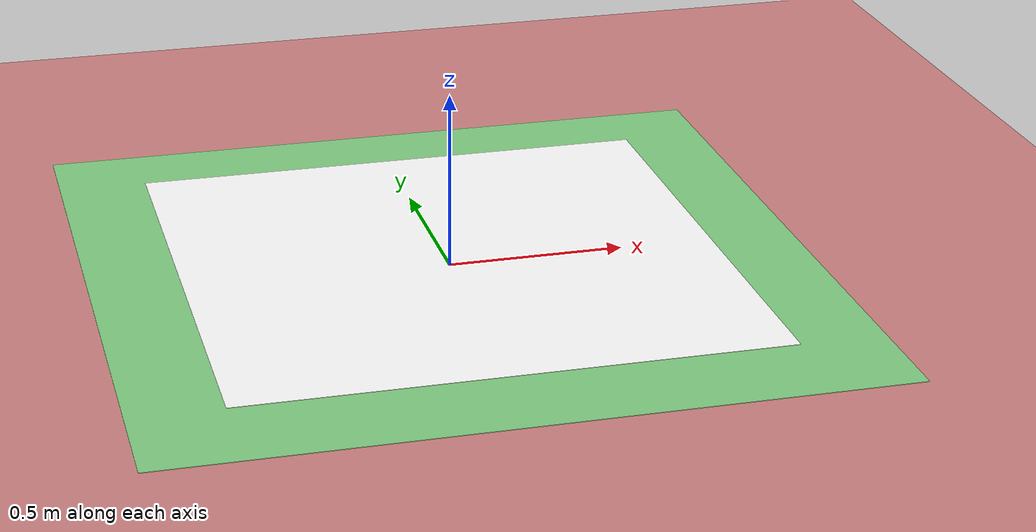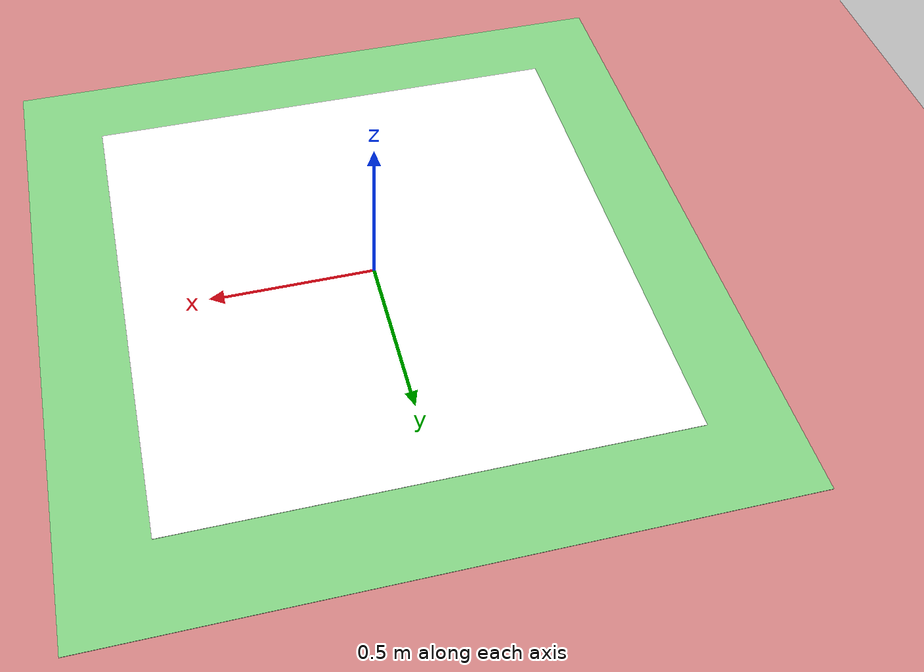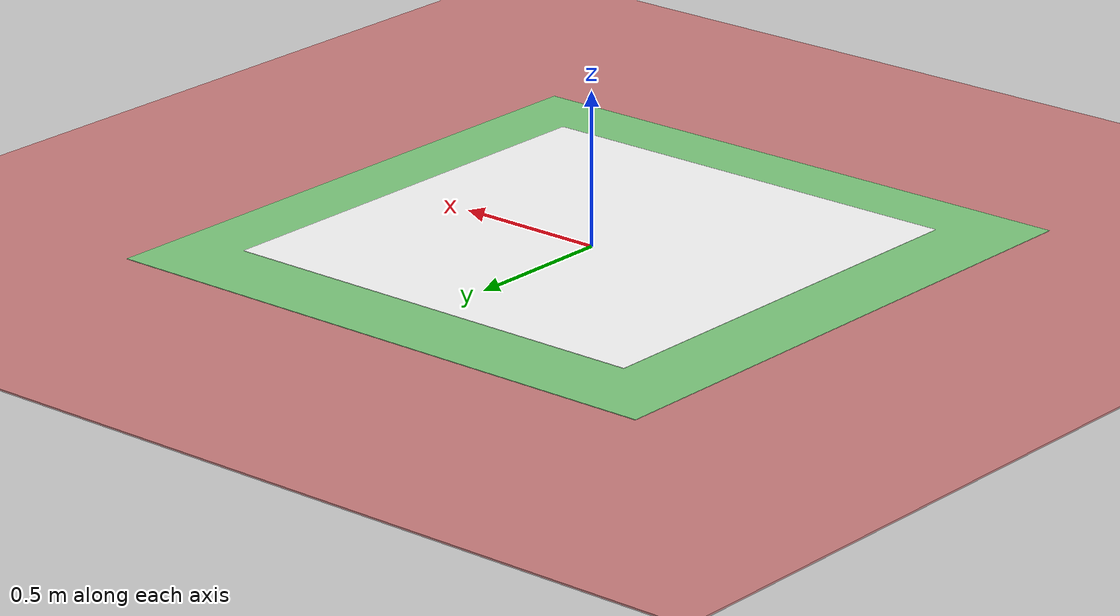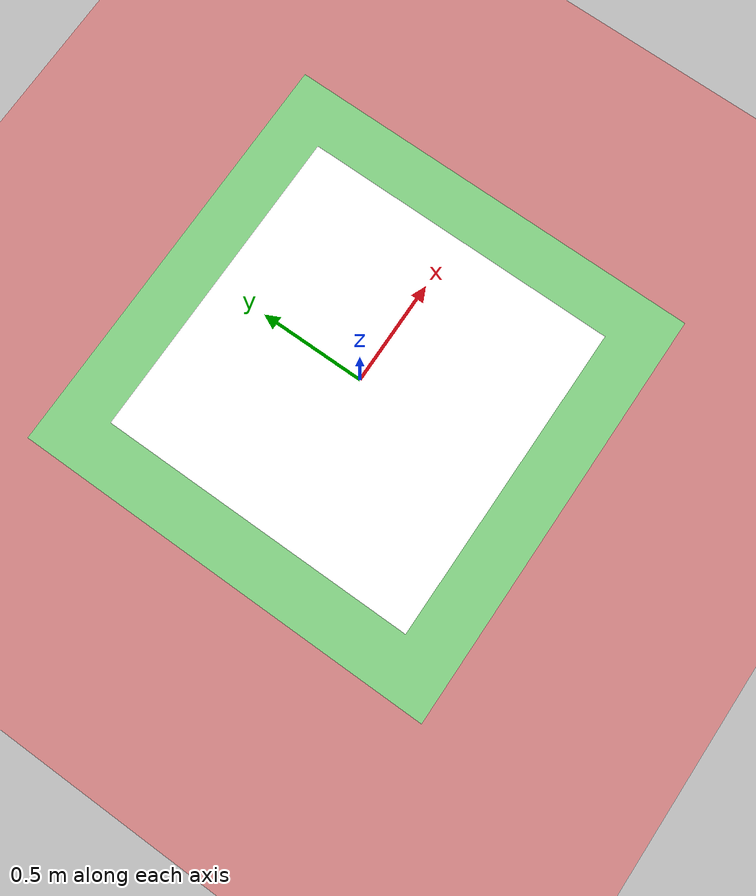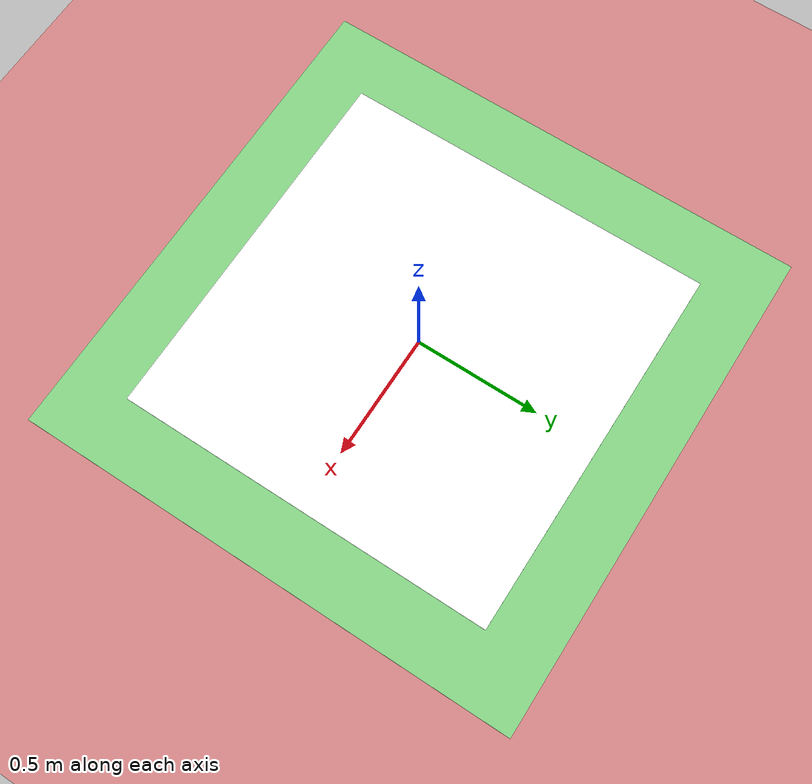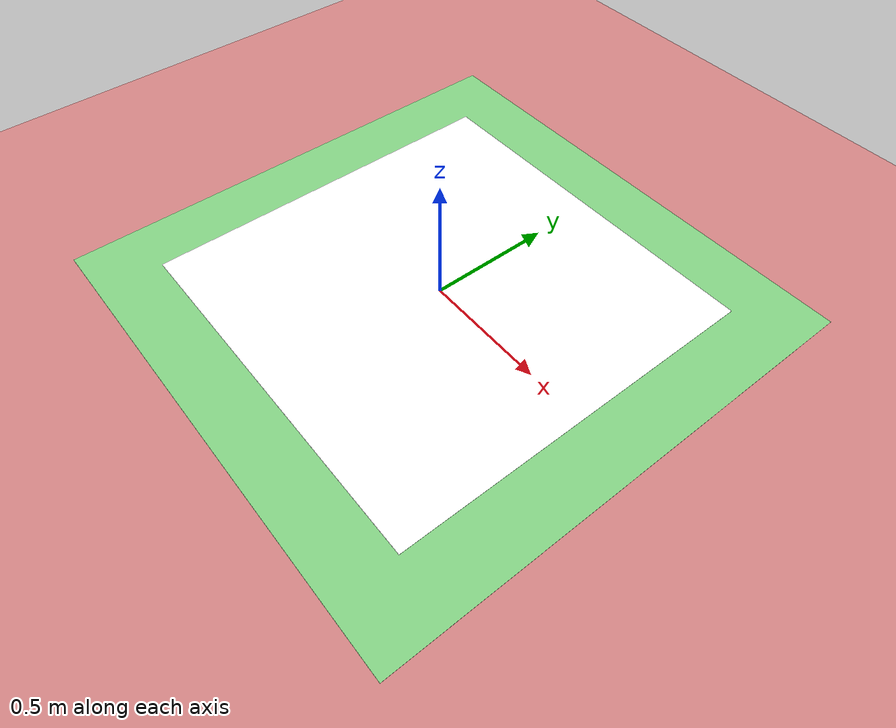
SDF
<?xml version="1.0" encoding="UTF-8"?>
<sdf version="1.9">
  <world name="aruco_mocap">
    <physics type="ode">
      <max_step_size>0.004</max_step_size>
      <real_time_factor>1.0</real_time_factor>
      <real_time_update_rate>250</real_time_update_rate>
    </physics>
    <gravity>0 0 -9.8</gravity>
    <magnetic_field>6e-06 2.3e-05 -4.2e-05</magnetic_field>
    <atmosphere type="adiabatic"/>
    <scene>
      <grid>false</grid>
      <ambient>0.4 0.4 0.4 1</ambient>
      <background>0.7 0.7 0.7 1</background>
      <shadows>true</shadows>
    </scene>

    <model name="ground_plane">
      <static>true</static>
      <link name="link">
        <collision name="collision">
          <geometry>
            <plane>
              <normal>0 0 1</normal>
              <size>1 1</size>
            </plane>
          </geometry>
          <surface>
            <friction>
              <ode/>
            </friction>
            <bounce/>
            <contact/>
          </surface>
        </collision>
        <visual name="visual">
          <geometry>
            <plane>
              <normal>0 0 1</normal>
              <size>100 100</size>
            </plane>
          </geometry>
          <material>
            <ambient>0.8 0.8 0.8 1</ambient>
            <diffuse>0.8 0.8 0.8 1</diffuse>
            <specular>0.8 0.8 0.8 1</specular>
          </material>
        </visual>
        <pose>0 0 0 0 -0 0</pose>
        <inertial>
          <pose>0 0 0 0 -0 0</pose>
          <mass>1</mass>
          <inertia>
            <ixx>1</ixx>
            <ixy>0</ixy>
            <ixz>0</ixz>
            <iyy>1</iyy>
            <iyz>0</iyz>
            <izz>1</izz>
          </inertia>
        </inertial>
        <enable_wind>false</enable_wind>
      </link>
      <pose>0 0 0 0 -0 0</pose>
      <self_collide>false</self_collide>
    </model>

<model name="mocap_plane">
      <static>true</static>
      <link name="link">
        <collision name="collision">
          <geometry>
            <plane>
              <normal>0 0 1</normal>
              <size>1 1</size>
            </plane>
          </geometry>
          <surface>
            <friction>
              <ode/>
            </friction>
            <bounce/>
            <contact/>
          </surface>
        </collision>
        <visual name="visual">
          <geometry>
            <plane>
              <normal>0 0 1</normal>
              <size>10 5</size>
            </plane>
          </geometry>
          <material>
            <ambient>0.8 0.8 0.8 1</ambient>
            <diffuse>0.8 0.5 0.5 1</diffuse>
            <specular>0.8 0.8 0.8 1</specular>
          </material>
        </visual>
        <pose>0 0 0.001 0 -0 0</pose>
        <inertial>
          <pose>0 0 0 0 -0 0</pose>
          <mass>1</mass>
          <inertia>
            <ixx>1</ixx>
            <ixy>0</ixy>
            <ixz>0</ixz>
            <iyy>1</iyy>
            <iyz>0</iyz>
            <izz>1</izz>
          </inertia>
        </inertial>
        <enable_wind>false</enable_wind>
      </link>
      <pose>0 0 0 0 -0 0</pose>
      <self_collide>false</self_collide>
    </model>

    <model name="safe_plane">
      <static>true</static>
      <link name="link">
        <collision name="collision">
          <geometry>
            <plane>
              <normal>0 0 1</normal>
              <size>1 1</size>
            </plane>
          </geometry>
          <surface>
            <friction>
              <ode/>
            </friction>
            <bounce/>
            <contact/>
          </surface>
        </collision>
        <visual name="visual">
          <geometry>
            <plane>
              <normal>0 0 1</normal>
              <size>2 2</size>
            </plane>
          </geometry>
          <material>
            <ambient>0.8 0.8 0.8 1</ambient>
            <diffuse>0.5 0.8 0.5 1</diffuse>
            <specular>0.8 0.8 0.8 1</specular>
          </material>
        </visual>
        <pose>0 0 0.005 0 -0 0</pose>
        <inertial>
          <pose>0 0 0 0 -0 0</pose>
          <mass>1</mass>
          <inertia>
            <ixx>1</ixx>
            <ixy>0</ixy>
            <ixz>0</ixz>
            <iyy>1</iyy>
            <iyz>0</iyz>
            <izz>1</izz>
          </inertia>
        </inertial>
        <enable_wind>false</enable_wind>
      </link>
      <pose>0 0 0 0 -0 0</pose>
      <self_collide>false</self_collide>
    </model>

    <light name="sunUTC" type="directional">
      <pose>0 0 500 0 -0 0</pose>
      <cast_shadows>true</cast_shadows>
      <intensity>1</intensity>
      <direction>0.001 0.625 -0.78</direction>
      <diffuse>0.904 0.904 0.904 1</diffuse>
      <specular>0.271 0.271 0.271 1</specular>
      <attenuation>
        <range>2000</range>
        <linear>0</linear>
        <constant>1</constant>
        <quadratic>0</quadratic>
      </attenuation>
      <spot>
        <inner_angle>0</inner_angle>
        <outer_angle>0</outer_angle>
        <falloff>0</falloff>
      </spot>
    </light>
    <spherical_coordinates>
      <surface_model>EARTH_WGS84</surface_model>
      <world_frame_orientation>ENU</world_frame_orientation>
      <latitude_deg>47.397971057728974</latitude_deg>
      <longitude_deg> 8.546163739800146</longitude_deg>
      <elevation>0</elevation>
    </spherical_coordinates>

    <include>
      <pose>0 0 0.02 0 0 0</pose>
      <uri>model://arucotag_staged</uri>
    </include>

  </world>
</sdf>

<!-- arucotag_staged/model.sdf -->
<sdf version='1.9'>
  <model name='arucotag'>
    <static>true</static>
    <pose>0 0 0.001 0 0 0</pose>
    <link name='base'>
      <visual name='base_visual'>
        <geometry>
          <plane>
            <normal>0 0 1</normal>
            <size>1.5 1.5</size>
          </plane>
        </geometry>
        <material>
          <diffuse>1 1 1 1</diffuse>
          <specular>0.4 0.4 0.4 1</specular>
          <pbr>
            <metal>
              <albedo_map>model://arucotag_staged/arucotag.png</albedo_map>
            </metal>
          </pbr>
        </material>
      </visual>
    </link>
  </model>
</sdf>
